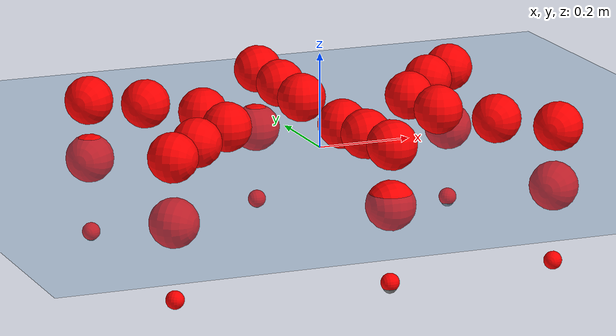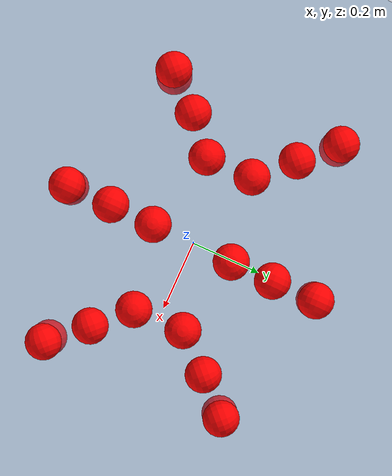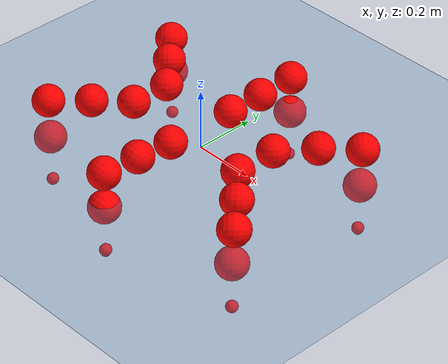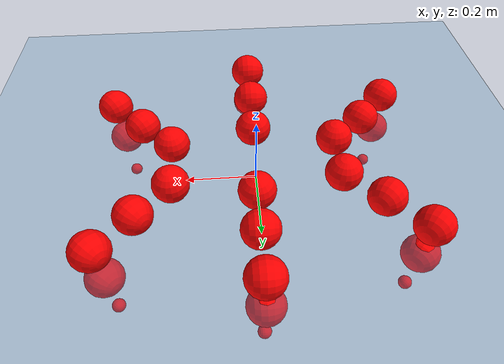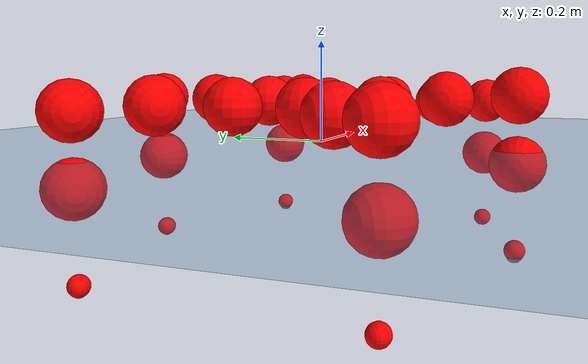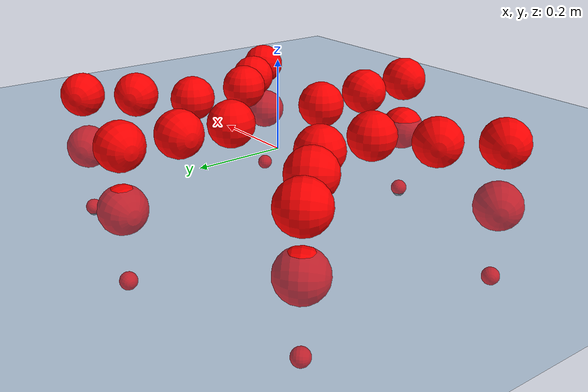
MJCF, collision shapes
<mujoco model="Golem">
  <compiler angle="radian" assetdir="assets" balanceinertia="true" inertiafromgeom="false"/>

  <option timestep="0.005" density="1.2" viscosity="2e-05"/>

  <size nkey="1"/>

  <visual>
    <quality shadowsize="8192"/>
    <map shadowclip="0.5"/>
  </visual>

  <default>
    <default class="/">
      <joint armature="0.01" damping="0.01" frictionloss="0.01"/>
      <geom contype="0" conaffinity="0" group="1" solref="-1000 -80"/>
      <site size="0.01 0.005 0.005" group="5"/>
      <general forcelimited="true" biastype="affine" gainprm="25" biasprm="0 -25 -0.5"/>
      <default class="visual">
        <geom type="mesh" group="2"/>
      </default>
      <default class="collision">
        <geom group="3"/>
      </default>
      <default class="foot">
        <geom size="0.01 0 0" condim="6" group="4" priority="1" solimp="0.015 1 0.01"/>
      </default>
      <default class="reward_collision_sphere">
        <geom group="5" rgba="1 0 0 1"/>
      </default>
    </default>
  </default>

  <asset>
    <texture type="skybox" colorspace="auto" name="//unnamed_texture_0" builtin="gradient" rgb1="0.95 0.95 0.95" rgb2="0.95 0.95 0.95" width="100" height="600"/>
    <texture type="2d" colorspace="auto" name="texplane" builtin="checker" rgb1="0.345 0.575 0.748" rgb2="0.345 0.575 0.748" markrgb="1 1 1" width="512" height="512"/>
    <material name="MatPlane" class="/" texture="texplane" texuniform="true" texrepeat="2 2" specular="0.9"/>
    <mesh name="body" class="/" file="body.stl" scale="0.001 0.001 0.001"/>
    <mesh name="coxa" class="/" file="coxa.stl" scale="0.001 0.001 0.001"/>
    <mesh name="femur" class="/" file="femur.stl" scale="0.001 0.001 0.001"/>
    <mesh name="tibia" class="/" file="tibia.stl" scale="0.001 0.001 0.001"/>
    <mesh name="tarsus" class="/" file="tarsus.stl" scale="0.001 0.001 0.001"/>
  </asset>

  <worldbody>
    <geom name="floor" class="/" size="100 100 0.125" type="plane" group="0" material="MatPlane"/>
    <light name="toplight_shadow" class="/" pos="0 0 5" dir="0.0990148 0.0990148 -0.990148" type="directional" ambient="0.04 0.04 0.04" diffuse="0.55 0.55 0.55" specular="0.12 0.12 0.12"/>
    <light name="toplight_fill" class="/" pos="0 0 5" dir="0.0990148 0.0990148 -0.990148" type="directional" castshadow="false" ambient="0.04 0.04 0.04" diffuse="0.3 0.3 0.3" specular="0.08 0.08 0.08"/>
    <body name="trunk" pos="0.00261403 0.00187797 0.00191584" quat="1 0.000101332 -0.000111071 1.71275e-06">
      <inertial pos="-0.00242662 0.00213209 0.00710657" quat="0.999947 -0.00579354 -0.00469179 -0.00715239" mass="7.54705" diaginertia="0.074267 0.0277733 0.0184471"/>
      <joint name="//unnamed_joint_0" type="free"/>
      <geom name="//unnamed_geom_1" class="/" pos="0 0 0.073171" quat="1 0 0 0" type="mesh" rgba="0.9 0.9 0.9 1" mesh="body"/>
      <site name="imu" class="/" pos="0.169582 -0.0129437 0.11201" size="0.012858"/>
      <camera name="track" class="/" pos="0 -2.44788 0" quat="0.707107 0.707107 0 0" mode="trackcom"/>
      <camera name="ego_camera" class="/" pos="0.19372 0 0.11433" quat="-0.5 -0.5 0.5 0.5"/>
      <body name="coxa_RR" pos="-0.264838 -0.0967799 0.0788327" quat="0.38251 0.000168314 -0.000136589 -0.923951">
        <inertial pos="3.56767e-05 0.00202379 0.000573583" quat="0.999998 -4.70524e-05 0.00189722 0.00109515" mass="0.431429" diaginertia="0.0769317 0.0286347 0.0219833"/>
        <joint name="coxa_joint_RR" class="/" pos="0 0 0" axis="-0.00860864 0.0059397 -0.999945" stiffness="0.0126017" range="-3.15168 3.14209" armature="0.0115677" damping="0.0161075" frictionloss="0.011515"/>
        <geom name="//unnamed_geom_2" class="/" type="mesh" rgba="0.2 0.2 0.2 1" mesh="coxa"/>
        <geom name="//unnamed_geom_3" class="reward_collision_sphere" size="0.0514319" pos="-0.0447046 0 0"/>
        <body name="femur_RR" pos="0.084344 -0.00814092 -0.00326178" quat="0.499558 -0.500793 0.499872 0.499776">
          <inertial pos="0.00744353 -0.00068443 0.00856939" quat="0.999242 0.00361873 0.0222477 0.0317352" mass="0.449889" diaginertia="0.0764788 0.0284037 0.0200696"/>
          <joint name="femur_joint_RR" class="/" pos="0 0 0" axis="-0.00396487 -0.00116185 -0.999991" range="-3.16379 3.14872" armature="0.011461" damping="0.0113905" frictionloss="0.0124171"/>
          <geom name="//unnamed_geom_4" class="/" type="mesh" rgba="0.9 0.9 0.9 1" mesh="femur"/>
          <geom name="//unnamed_geom_5" class="reward_collision_sphere" size="0.0514319"/>
          <body name="tibia_RR" pos="-0.00157993 -0.131075 0.00753494" quat="0.000389839 0.999999 0.000993421 0.000745274">
            <inertial pos="0.000629404 -0.000532892 0.00533456" quat="0.999959 -0.00619298 0.00292279 -0.00593158" mass="0.37604" diaginertia="0.0635837 0.023254 0.0172494"/>
            <joint name="tibia_joint_RR" class="/" pos="0 0 0" axis="0.000983933 -0.0225249 0.999746" stiffness="0.0114296" range="-3.09992 3.14251" armature="0.0131682" damping="0" frictionloss="0.0154515"/>
            <geom name="//unnamed_geom_6" class="/" type="mesh" rgba="0.2 0.2 0.2 1" mesh="tibia"/>
            <geom name="//unnamed_geom_7" class="reward_collision_sphere" size="0.0514319"/>
            <body name="tarsus_RR" pos="0.134568 -0.000823085 -0.00071745" quat="1 0.000345661 0.000219438 3.46688e-05">
              <inertial pos="0.090661 0.000543528 0.00139728" quat="0.5311 0.486645 0.480856 0.499887" mass="0.389901" diaginertia="0.0754174 0.0288288 0.0187406"/>
              <joint name="tarsus_joint_RR" class="/" pos="0 0 0" axis="-0.0297064 -0.0277618 0.999173" range="-3.17636 3.18879" armature="0.0129622" damping="0.0364387" frictionloss="0.0136302"/>
              <geom name="//unnamed_geom_8" class="/" type="mesh" rgba="0.9 0.9 0.9 1" mesh="tarsus"/>
              <geom name="foot_1" class="foot" size="0.012681" pos="0.166897 0 0" quat="0 -0.707107 0 0.707107"/>
              <geom name="//unnamed_geom_10" class="reward_collision_sphere" size="0.0514319"/>
              <geom name="//unnamed_geom_11" class="reward_collision_sphere" size="0.0192869" pos="0.160192 0 0"/>
              <site name="foot_1" class="foot" pos="0.166897 0 0" quat="0 -0.707107 0 0.707107" size="0.012858"/>
            </body>
          </body>
        </body>
      </body>
      <body name="coxa_RM" pos="-0.00240612 -0.16883 0.0775877" quat="0.708992 -0.00283853 -0.0011214 -0.70521">
        <inertial pos="0.00463822 0.00100268 0.0063456" quat="0.999826 0.0167158 -0.000324336 0.00822922" mass="0.422935" diaginertia="0.0825645 0.0276029 0.0194552"/>
        <joint name="coxa_joint_RM" class="/" pos="0 0 0" axis="0.0086449 -0.00866274 -0.999925" range="-3.1758 3.096" armature="0.0142474" damping="0.00784364" frictionloss="0.0130513"/>
        <geom name="//unnamed_geom_12" class="/" type="mesh" rgba="0.2 0.2 0.2 1" mesh="coxa"/>
        <geom name="//unnamed_geom_13" class="reward_collision_sphere" size="0.0514319" pos="-0.0447046 0 0"/>
        <body name="femur_RM" pos="0.0837173 -0.00237874 0.00890328" quat="0.499589 -0.499795 0.501432 0.499181">
          <inertial pos="-0.00669479 -0.000106437 -0.000243599" quat="0.999323 -0.00137311 0.0243356 0.0275595" mass="0.414856" diaginertia="0.0743891 0.0288643 0.0189409"/>
          <joint name="femur_joint_RM" class="/" pos="0 0 0" axis="0.0109129 0.0204599 -0.999731" stiffness="0.00946211" range="-3.11327 3.14323" armature="0.0130867" damping="0.0156717" frictionloss="0.0114818"/>
          <geom name="//unnamed_geom_14" class="/" type="mesh" rgba="0.9 0.9 0.9 1" mesh="femur"/>
          <geom name="//unnamed_geom_15" class="reward_collision_sphere" size="0.0514319"/>
          <body name="tibia_RM" pos="-0.00767695 -0.131583 0.000713401" quat="5.39294e-05 1 1.01752e-05 0.000256488">
            <inertial pos="0.00745681 6.42486e-05 0.00199115" quat="0.999947 -0.0102656 -0.000514617 0.000815569" mass="0.423477" diaginertia="0.0708172 0.0291494 0.0216754"/>
            <joint name="tibia_joint_RM" class="/" pos="0 0 0" axis="0.000810106 -0.0137545 0.999905" range="-3.1071 3.13681" armature="0.012619" damping="0.0184611" frictionloss="0.0126999"/>
            <geom name="//unnamed_geom_16" class="/" type="mesh" rgba="0.2 0.2 0.2 1" mesh="tibia"/>
            <geom name="//unnamed_geom_17" class="reward_collision_sphere" size="0.0514319"/>
            <body name="tarsus_RM" pos="0.124151 7.25439e-05 0.00207999" quat="1 -0.000279313 -0.000428491 -0.00082905">
              <inertial pos="0.0881923 -0.00077358 -0.001751" quat="0.506652 0.501074 0.496985 0.495211" mass="0.440749" diaginertia="0.0794283 0.0276689 0.0188074"/>
              <joint name="tarsus_joint_RM" class="/" pos="0 0 0" axis="-0.00877654 -0.0174816 0.999809" range="-3.09872 3.12973" armature="0.0131904" damping="0.0184045" frictionloss="0.014144"/>
              <geom name="//unnamed_geom_18" class="/" type="mesh" rgba="0.9 0.9 0.9 1" mesh="tarsus"/>
              <geom name="foot_2" class="foot" size="0.0157624" pos="0.166897 0 0" quat="0 -0.707107 0 0.707107"/>
              <geom name="//unnamed_geom_20" class="reward_collision_sphere" size="0.0514319"/>
              <geom name="//unnamed_geom_21" class="reward_collision_sphere" size="0.0192869" pos="0.160192 0 0"/>
              <site name="foot_2" class="foot" pos="0.166897 0 0" quat="0 -0.707107 0 0.707107" size="0.012858"/>
            </body>
          </body>
        </body>
      </body>
      <body name="coxa_RF" pos="0.264792 -0.107099 0.0740052" quat="0.923852 0.00030532 -0.000105602 -0.382749">
        <inertial pos="0.00823046 0.00232247 0.00226095" quat="0.99969 0.000334135 -0.0198583 -0.0150199" mass="0.37682" diaginertia="0.0717118 0.0297477 0.0196917"/>
        <joint name="coxa_joint_RF" class="/" pos="0 0 0" axis="0.00259557 0.0112808 -0.999933" stiffness="0.00247258" range="-3.13505 3.13156" armature="0.0106197" damping="0.0108884" frictionloss="0.012398"/>
        <geom name="//unnamed_geom_22" class="/" type="mesh" rgba="0.2 0.2 0.2 1" mesh="coxa"/>
        <geom name="//unnamed_geom_23" class="reward_collision_sphere" size="0.0514319" pos="-0.0447046 0 0"/>
        <body name="femur_RF" pos="0.0847757 2.8438e-05 -0.00660976" quat="0.499819 -0.500325 0.499861 0.499995">
          <inertial pos="-0.00170026 -0.00736744 -0.0012744" quat="0.999946 -0.00350568 0.00913833 -0.00334649" mass="0.437749" diaginertia="0.0708213 0.0289691 0.0189001"/>
          <joint name="femur_joint_RF" class="/" pos="0 0 0" axis="0.0107032 -0.00283385 -0.999939" stiffness="0.0347849" range="-3.09586 3.19365" armature="0.012562" damping="0.00670146" frictionloss="0.0119491"/>
          <geom name="//unnamed_geom_24" class="/" type="mesh" rgba="0.9 0.9 0.9 1" mesh="femur"/>
          <geom name="//unnamed_geom_25" class="reward_collision_sphere" size="0.0514319"/>
          <body name="tibia_RF" pos="0.00172935 -0.136654 -0.00475686" quat="-0.000665501 0.999999 -0.000456867 0.000977204">
            <inertial pos="0.00625032 0.00339959 -0.00522361" quat="0.999965 -0.00153278 -0.00492517 0.00651676" mass="0.406486" diaginertia="0.0731874 0.0281251 0.0197746"/>
            <joint name="tibia_joint_RF" class="/" pos="0 0 0" axis="0.00729103 0.00728187 0.999947" stiffness="0.00261543" range="-3.10689 3.20689" armature="0.0111168" damping="0.0515737" frictionloss="0.0140323"/>
            <geom name="//unnamed_geom_26" class="/" type="mesh" rgba="0.2 0.2 0.2 1" mesh="tibia"/>
            <geom name="//unnamed_geom_27" class="reward_collision_sphere" size="0.0514319"/>
            <body name="tarsus_RF" pos="0.125976 -0.00615244 0.00562269" quat="0.999999 -0.00135875 0.000240242 0.000303907">
              <inertial pos="0.0859186 -3.18177e-05 -0.00201591" quat="0.500216 0.500124 0.493864 0.505726" mass="0.430437" diaginertia="0.0735694 0.0249249 0.0207763"/>
              <joint name="tarsus_joint_RF" class="/" pos="0 0 0" axis="0.00109305 -0.000162235 0.999999" range="-3.11595 3.13249" armature="0.0101128" damping="0.00147928" frictionloss="0.00751907"/>
              <geom name="//unnamed_geom_28" class="/" type="mesh" rgba="0.9 0.9 0.9 1" mesh="tarsus"/>
              <geom name="foot_3" class="foot" size="0.00964242" pos="0.166897 0 0" quat="0 -0.707107 0 0.707107"/>
              <geom name="//unnamed_geom_30" class="reward_collision_sphere" size="0.0514319"/>
              <geom name="//unnamed_geom_31" class="reward_collision_sphere" size="0.0192869" pos="0.160192 0 0"/>
              <site name="foot_3" class="foot" pos="0.166897 0 0" quat="0 -0.707107 0 0.707107" size="0.012858"/>
            </body>
          </body>
        </body>
      </body>
      <body name="coxa_LR" pos="-0.266182 0.102788 0.0778863" quat="0.382731 -0.00297949 -0.000764343 0.923855">
        <inertial pos="-0.00197006 0.00147872 0.00782427" quat="0.999794 -0.0179115 0.00726941 -0.00613881" mass="0.501749" diaginertia="0.0814766 0.030859 0.0222693"/>
        <joint name="coxa_joint_LR" class="/" pos="0 0 0" axis="-0.00479294 -0.00201145 -0.999986" range="-3.16023 2.9801" armature="0.0101965" damping="0.0148619" frictionloss="0.0179315"/>
        <geom name="//unnamed_geom_32" class="/" type="mesh" rgba="0.2 0.2 0.2 1" mesh="coxa"/>
        <geom name="//unnamed_geom_33" class="reward_collision_sphere" size="0.0514319" pos="-0.0447046 0 0"/>
        <body name="femur_LR" pos="0.0875138 -0.00217769 0.00538547" quat="0.501061 -0.499196 0.499661 0.50008">
          <inertial pos="-0.00148127 -0.00224382 -0.00174232" quat="0.999966 0.00615148 -0.00546729 -0.000635776" mass="0.43312" diaginertia="0.0749363 0.0250587 0.0204155"/>
          <joint name="femur_joint_LR" class="/" pos="0 0 0" axis="0.00128133 -0.00122962 0.999998" stiffness="0.0144318" range="-3.0983 3.21917" armature="0.0111621" damping="0.0132096" frictionloss="0.0121958"/>
          <geom name="//unnamed_geom_34" class="/" type="mesh" rgba="0.9 0.9 0.9 1" mesh="femur"/>
          <geom name="//unnamed_geom_35" class="reward_collision_sphere" size="0.0514319"/>
          <body name="tibia_LR" pos="0.00481155 -0.131481 -0.00025888" quat="0.000699358 0.999998 -0.000175638 0.00190611">
            <inertial pos="-0.00238027 -0.00693881 0.000409672" quat="0.999762 0.0213119 0.0040071 -0.00219386" mass="0.432451" diaginertia="0.0643336 0.0252376 0.0209598"/>
            <joint name="tibia_joint_LR" class="/" pos="0 0 0" axis="0.00850671 -0.00768065 -0.999934" range="-3.14819 3.1465" armature="0.0134049" damping="0" frictionloss="0.0118401"/>
            <geom name="//unnamed_geom_36" class="/" type="mesh" rgba="0.2 0.2 0.2 1" mesh="tibia"/>
            <geom name="//unnamed_geom_37" class="reward_collision_sphere" size="0.0514319"/>
            <body name="tarsus_LR" pos="0.125146 0.000591573 0.000901161" quat="1 -1.65629e-05 0.000184358 -6.19653e-05">
              <inertial pos="0.0901839 0.00238526 -0.000650172" quat="0.498426 0.499373 0.499708 0.502485" mass="0.459723" diaginertia="0.0795117 0.0306345 0.0216703"/>
              <joint name="tarsus_joint_LR" class="/" pos="0 0 0" axis="-0.0035535 -0.00517286 -0.99998" range="-3.1805 3.10466" armature="0.0182737" damping="0.038982" frictionloss="0.0125061"/>
              <geom name="//unnamed_geom_38" class="/" type="mesh" rgba="0.9 0.9 0.9 1" mesh="tarsus"/>
              <geom name="foot_4" class="foot" size="0.0137947" pos="0.166897 0 0" quat="0.707107 0 -0.707107 0"/>
              <geom name="//unnamed_geom_40" class="reward_collision_sphere" size="0.0514319"/>
              <geom name="//unnamed_geom_41" class="reward_collision_sphere" size="0.0192869" pos="0.160192 0 0"/>
              <site name="foot_4" class="foot" pos="0.166897 0 0" quat="0.707107 0 -0.707107 0" size="0.012858"/>
            </body>
          </body>
        </body>
      </body>
      <body name="coxa_LM" pos="0.00309885 0.160223 0.0768023" quat="0.70658 -0.00434002 0.0010055 0.707619">
        <inertial pos="-0.00493378 0.00594893 0.00193312" quat="0.999712 0.00524387 -0.00132379 0.0234008" mass="0.417606" diaginertia="0.0763719 0.0277619 0.0189641"/>
        <joint name="coxa_joint_LM" class="/" pos="0 0 0" axis="-0.000748188 -0.00767131 -0.99997" range="-3.15815 3.14493" armature="0.00775296" damping="0.0132652" frictionloss="0.0133835"/>
        <geom name="//unnamed_geom_42" class="/" type="mesh" rgba="0.2 0.2 0.2 1" mesh="coxa"/>
        <geom name="//unnamed_geom_43" class="reward_collision_sphere" size="0.0514319" pos="-0.0447046 0 0"/>
        <body name="femur_LM" pos="0.0804579 -0.00107643 0.00378564" quat="0.499012 -0.500792 0.501013 0.499179">
          <inertial pos="0.00460586 0.000103814 0.00605838" quat="0.999957 -0.000227044 -0.007949 -0.00472324" mass="0.378614" diaginertia="0.0690139 0.0270792 0.0186754"/>
          <joint name="femur_joint_LM" class="/" pos="0 0 0" axis="0.010742 0.00793997 0.999911" range="-3.18649 3.16358" armature="0.0111114" damping="0.00761551" frictionloss="0.0126571"/>
          <geom name="//unnamed_geom_44" class="/" type="mesh" rgba="0.9 0.9 0.9 1" mesh="femur"/>
          <geom name="//unnamed_geom_45" class="reward_collision_sphere" size="0.0514319"/>
          <body name="tibia_LM" pos="-0.00299277 -0.131127 -0.000337663" quat="0.00011642 1 -0.000183013 -0.000333494">
            <inertial pos="-0.00753304 -0.00814344 -0.00853975" quat="0.999998 0.00118923 -0.00157497 -0.000109846" mass="0.418928" diaginertia="0.0722858 0.0287871 0.018242"/>
            <joint name="tibia_joint_LM" class="/" pos="0 0 0" axis="0.00771175 0.00221064 -0.999968" stiffness="0.0199564" range="-3.11462 3.14294" armature="0.0110038" damping="0.00334912" frictionloss="0.0153978"/>
            <geom name="//unnamed_geom_46" class="/" type="mesh" rgba="0.2 0.2 0.2 1" mesh="tibia"/>
            <geom name="//unnamed_geom_47" class="reward_collision_sphere" size="0.0514319"/>
            <body name="tarsus_LM" pos="0.130814 0.00516062 -0.00443798" quat="0.999999 0.00101449 0.000776708 -0.000251139">
              <inertial pos="0.0897081 0.000112731 -0.00213677" quat="0.49771 0.492272 0.505851 0.504051" mass="0.384706" diaginertia="0.072083 0.0220137 0.0177055"/>
              <joint name="tarsus_joint_LM" class="/" pos="0 0 0" axis="-0.0172355 -0.01477 -0.999742" range="-2.95401 3.18444" armature="0.0124901" damping="0" frictionloss="0.0125009"/>
              <geom name="//unnamed_geom_48" class="/" type="mesh" rgba="0.9 0.9 0.9 1" mesh="tarsus"/>
              <geom name="foot_5" class="foot" size="0.0132194" pos="0.166897 0 0" quat="0.707107 0 -0.707107 0"/>
              <geom name="//unnamed_geom_50" class="reward_collision_sphere" size="0.0514319"/>
              <geom name="//unnamed_geom_51" class="reward_collision_sphere" size="0.0192869" pos="0.160192 0 0"/>
              <site name="foot_5" class="foot" pos="0.166897 0 0" quat="0.707107 0 -0.707107 0" size="0.012858"/>
            </body>
          </body>
        </body>
      </body>
      <body name="coxa_LF" pos="0.261994 0.103603 0.0706889" quat="0.923615 -0.000802364 0.00295928 0.38331">
        <inertial pos="0.000932988 -0.00781776 -0.00124713" quat="0.999962 0.00668942 0.00226603 -0.00519163" mass="0.4039" diaginertia="0.0679446 0.02348 0.0177602"/>
        <joint name="coxa_joint_LF" class="/" pos="0 0 0" axis="-0.0105674 -0.0038801 -0.999937" stiffness="0.00374581" range="-3.14778 3.18132" armature="0.00738111" damping="0.0159925" frictionloss="0.013548"/>
        <geom name="//unnamed_geom_52" class="/" type="mesh" rgba="0.2 0.2 0.2 1" mesh="coxa"/>
        <geom name="//unnamed_geom_53" class="reward_collision_sphere" size="0.0514319" pos="-0.0447046 0 0"/>
        <body name="femur_LF" pos="0.0885633 0.00956582 0.00700529" quat="0.499176 -0.500022 0.501835 0.498962">
          <inertial pos="-0.00288051 -0.00209532 -0.00850266" quat="0.999607 -0.000676721 -0.0269527 0.00769767" mass="0.435296" diaginertia="0.0753678 0.0243817 0.018969"/>
          <joint name="femur_joint_LF" class="/" pos="0 0 0" axis="-0.0205604 -0.00510687 0.999776" stiffness="0.0267097" range="-3.15338 3.28577" armature="0.0127396" damping="0.0159698" frictionloss="0.013826"/>
          <geom name="//unnamed_geom_54" class="/" type="mesh" rgba="0.9 0.9 0.9 1" mesh="femur"/>
          <geom name="//unnamed_geom_55" class="reward_collision_sphere" size="0.0514319"/>
          <body name="tibia_LF" pos="0.00367047 -0.130837 0.00318846" quat="0.00207133 0.999996 -0.00181182 -0.000887082">
            <inertial pos="0.00166084 0.00695173 0.000339293" quat="0.999947 0.00557745 -0.00805297 -0.00321766" mass="0.4151" diaginertia="0.0744205 0.0272619 0.0192524"/>
            <joint name="tibia_joint_LF" class="/" pos="0 0 0" axis="-0.0244169 -0.000721901 -0.999702" range="-3.03887 3.17929" armature="0.0113145" damping="0.0166495" frictionloss="0.00877881"/>
            <geom name="//unnamed_geom_56" class="/" type="mesh" rgba="0.2 0.2 0.2 1" mesh="tibia"/>
            <geom name="//unnamed_geom_57" class="reward_collision_sphere" size="0.0514319"/>
            <body name="tarsus_LF" pos="0.130615 -0.00273675 0.000143154" quat="0.99999 -0.00273096 3.60565e-05 0.00347063">
              <inertial pos="0.0921011 -0.000916361 -0.00130221" quat="0.493518 0.498715 0.499431 0.508225" mass="0.417471" diaginertia="0.0782777 0.0289007 0.0215921"/>
              <joint name="tarsus_joint_LF" class="/" pos="0 0 0" axis="0.0413989 -0.0101517 -0.999091" stiffness="0.00692689" range="-3.13088 3.23724" armature="0.0131215" damping="0.0444468" frictionloss="0.0121678"/>
              <geom name="//unnamed_geom_58" class="/" type="mesh" rgba="0.9 0.9 0.9 1" mesh="tarsus"/>
              <geom name="foot_6" class="foot" size="0.0152608" pos="0.166897 0 0" quat="0.707107 0 -0.707107 0"/>
              <geom name="//unnamed_geom_60" class="reward_collision_sphere" size="0.0514319"/>
              <geom name="//unnamed_geom_61" class="reward_collision_sphere" size="0.0192869" pos="0.160192 0 0"/>
              <site name="foot_6" class="foot" pos="0.166897 0 0" quat="0.707107 0 -0.707107 0" size="0.012858"/>
            </body>
          </body>
        </body>
      </body>
    </body>
  </worldbody>

  <contact>
    <pair class="/" geom1="floor" geom2="foot_1" name="//unnamed_contact_0"/>
    <pair class="/" geom1="floor" geom2="foot_2" name="//unnamed_contact_1"/>
    <pair class="/" geom1="floor" geom2="foot_3" name="//unnamed_contact_2"/>
    <pair class="/" geom1="floor" geom2="foot_4" name="//unnamed_contact_3"/>
    <pair class="/" geom1="floor" geom2="foot_5" name="//unnamed_contact_4"/>
    <pair class="/" geom1="floor" geom2="foot_6" name="//unnamed_contact_5"/>
  </contact>

  <actuator>
    <general name="coxa_joint_RR" class="/" joint="coxa_joint_RR" forcerange="-11.8717 11.8717" gainprm="30.8199" biasprm="0 -30.8199 -0.673964"/>
    <general name="femur_joint_RR" class="/" joint="femur_joint_RR" forcerange="-9.14404 9.14404" gainprm="30.8199" biasprm="0 -30.8199 -0.673964"/>
    <general name="tibia_joint_RR" class="/" joint="tibia_joint_RR" forcerange="-12.258 12.258" gainprm="30.8199" biasprm="0 -30.8199 -0.673964"/>
    <general name="tarsus_joint_RR" class="/" joint="tarsus_joint_RR" forcerange="-8.86739 8.86739" gainprm="30.8199" biasprm="0 -30.8199 -0.673964"/>
    <general name="coxa_joint_RM" class="/" joint="coxa_joint_RM" forcerange="-9.38859 9.38859" gainprm="30.8199" biasprm="0 -30.8199 -0.673964"/>
    <general name="femur_joint_RM" class="/" joint="femur_joint_RM" forcerange="-9.43874 9.43874" gainprm="30.8199" biasprm="0 -30.8199 -0.673964"/>
    <general name="tibia_joint_RM" class="/" joint="tibia_joint_RM" forcerange="-11.5115 11.5115" gainprm="30.8199" biasprm="0 -30.8199 -0.673964"/>
    <general name="tarsus_joint_RM" class="/" joint="tarsus_joint_RM" forcerange="-6.65703 6.65703" gainprm="30.8199" biasprm="0 -30.8199 -0.673964"/>
    <general name="coxa_joint_RF" class="/" joint="coxa_joint_RF" forcerange="-9.98678 9.98678" gainprm="30.8199" biasprm="0 -30.8199 -0.673964"/>
    <general name="femur_joint_RF" class="/" joint="femur_joint_RF" forcerange="-8.88384 8.88384" gainprm="30.8199" biasprm="0 -30.8199 -0.673964"/>
    <general name="tibia_joint_RF" class="/" joint="tibia_joint_RF" forcerange="-7.00945 7.00945" gainprm="30.8199" biasprm="0 -30.8199 -0.673964"/>
    <general name="tarsus_joint_RF" class="/" joint="tarsus_joint_RF" forcerange="-9.21235 9.21235" gainprm="30.8199" biasprm="0 -30.8199 -0.673964"/>
    <general name="coxa_joint_LR" class="/" joint="coxa_joint_LR" forcerange="-9.20403 9.20403" gainprm="30.8199" biasprm="0 -30.8199 -0.673964"/>
    <general name="femur_joint_LR" class="/" joint="femur_joint_LR" forcerange="-11.0536 11.0536" gainprm="30.8199" biasprm="0 -30.8199 -0.673964"/>
    <general name="tibia_joint_LR" class="/" joint="tibia_joint_LR" forcerange="-9.52996 9.52996" gainprm="30.8199" biasprm="0 -30.8199 -0.673964"/>
    <general name="tarsus_joint_LR" class="/" joint="tarsus_joint_LR" forcerange="-10.3711 10.3711" gainprm="30.8199" biasprm="0 -30.8199 -0.673964"/>
    <general name="coxa_joint_LM" class="/" joint="coxa_joint_LM" forcerange="-9.53266 9.53266" gainprm="30.8199" biasprm="0 -30.8199 -0.673964"/>
    <general name="femur_joint_LM" class="/" joint="femur_joint_LM" forcerange="-8.96896 8.96896" gainprm="30.8199" biasprm="0 -30.8199 -0.673964"/>
    <general name="tibia_joint_LM" class="/" joint="tibia_joint_LM" forcerange="-10.6411 10.6411" gainprm="30.8199" biasprm="0 -30.8199 -0.673964"/>
    <general name="tarsus_joint_LM" class="/" joint="tarsus_joint_LM" forcerange="-8.7625 8.7625" gainprm="30.8199" biasprm="0 -30.8199 -0.673964"/>
    <general name="coxa_joint_LF" class="/" joint="coxa_joint_LF" forcerange="-9.24676 9.24676" gainprm="30.8199" biasprm="0 -30.8199 -0.673964"/>
    <general name="femur_joint_LF" class="/" joint="femur_joint_LF" forcerange="-9.88748 9.88748" gainprm="30.8199" biasprm="0 -30.8199 -0.673964"/>
    <general name="tibia_joint_LF" class="/" joint="tibia_joint_LF" forcerange="-8.3564 8.3564" gainprm="30.8199" biasprm="0 -30.8199 -0.673964"/>
    <general name="tarsus_joint_LF" class="/" joint="tarsus_joint_LF" forcerange="-9.47914 9.47914" gainprm="30.8199" biasprm="0 -30.8199 -0.673964"/>
  </actuator>

  <sensor>
    <gyro site="imu" name="imu_angular_velocity"/>
    <velocimeter site="imu" name="imu_linear_velocity"/>
    <framelinvel objtype="site" objname="foot_1" name="foot_1_global_linear_velocity"/>
    <framelinvel objtype="site" objname="foot_2" name="foot_2_global_linear_velocity"/>
    <framelinvel objtype="site" objname="foot_3" name="foot_3_global_linear_velocity"/>
    <framelinvel objtype="site" objname="foot_4" name="foot_4_global_linear_velocity"/>
    <framelinvel objtype="site" objname="foot_5" name="foot_5_global_linear_velocity"/>
    <framelinvel objtype="site" objname="foot_6" name="foot_6_global_linear_velocity"/>
  </sensor>

  <keyframe>
    <key name="home" qpos="0 0 0.1457 1 0 0 0 0 0 0 0 0 0 0 0 0 0 0 0 0 0 0 0 0 0 0 0 0 0 0 0"/>
  </keyframe>
</mujoco>
